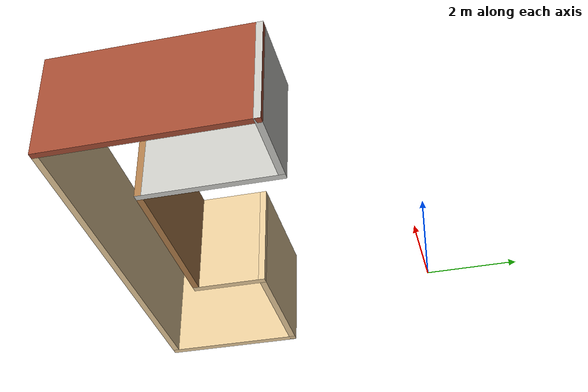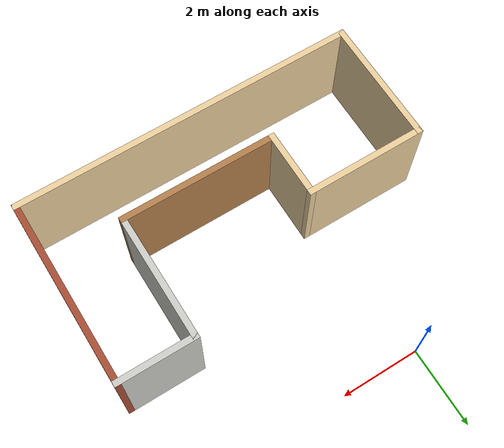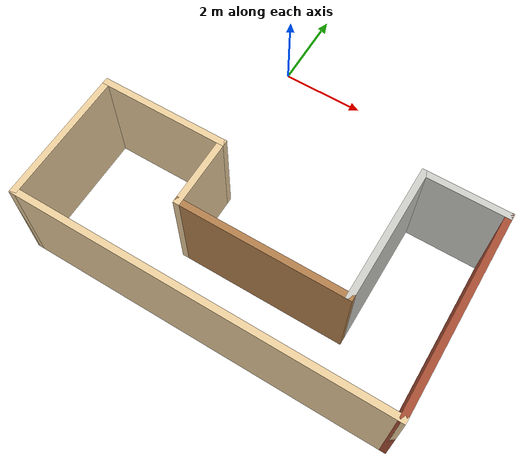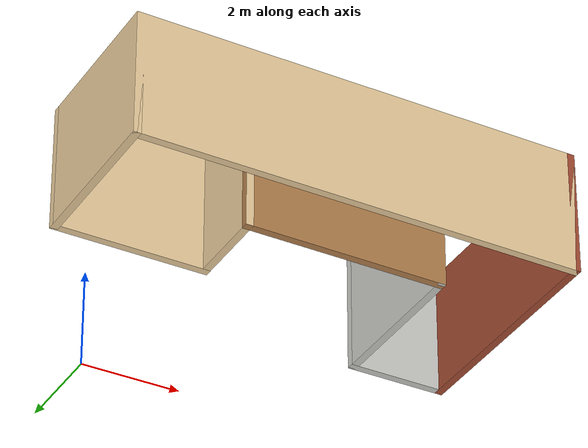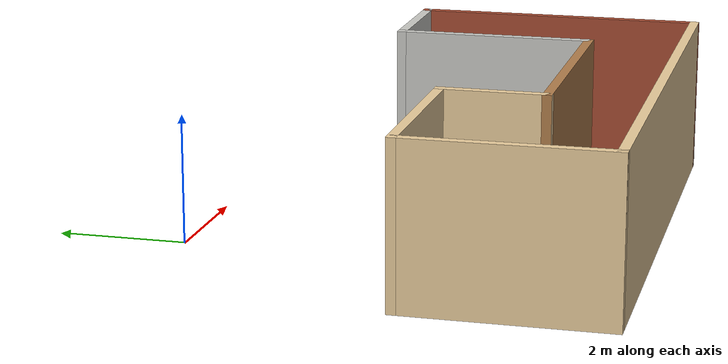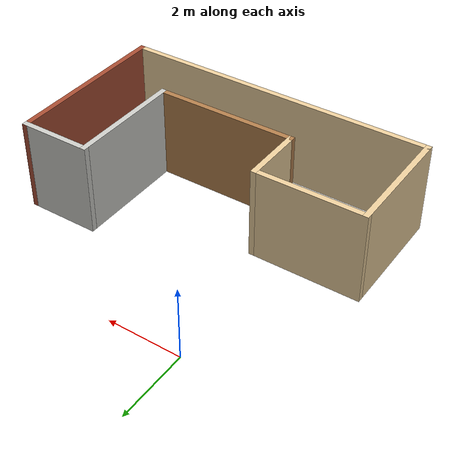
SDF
<?xml version='1.0'?>
<sdf version='1.6'>
  <model name='test'>
    <pose frame=''>1.97333 -4.5985 0 0 -0 0</pose>
    <link name='Wall_33'>
      <collision name='Wall_33_Collision'>
        <geometry>
          <box>
            <size>3.25 0.15 2.5</size>
          </box>
        </geometry>
        <pose frame=''>0 0 1.25 0 -0 0</pose>
      </collision>
      <visual name='Wall_33_Visual'>
        <pose frame=''>0 0 1.25 0 -0 0</pose>
        <geometry>
          <box>
            <size>3.25 0.15 2.5</size>
          </box>
        </geometry>
        <material>
          <script>
            <uri>file://media/materials/scripts/gazebo.material</uri>
            <name>Gazebo/Grey</name>
          </script>
          <ambient>0.921569 0.807843 0.615686 1</ambient>
        </material>
        <meta>
          <layer>0</layer>
        </meta>
      </visual>
      <pose frame=''>-4.3 -0.75 0 0 -0 -1.5708</pose>
    </link>
    <link name='Wall_34'>
      <collision name='Wall_34_Collision'>
        <geometry>
          <box>
            <size>8.75 0.15 2.5</size>
          </box>
        </geometry>
        <pose frame=''>0 0 1.25 0 -0 0</pose>
      </collision>
      <visual name='Wall_34_Visual'>
        <pose frame=''>0 0 1.25 0 -0 0</pose>
        <geometry>
          <box>
            <size>8.75 0.15 2.5</size>
          </box>
        </geometry>
        <material>
          <script>
            <uri>file://media/materials/scripts/gazebo.material</uri>
            <name>Gazebo/Grey</name>
          </script>
          <ambient>0.921569 0.807843 0.615686 1</ambient>
        </material>
        <meta>
          <layer>0</layer>
        </meta>
      </visual>
      <pose frame=''>0 -2.3 0 0 -0 0</pose>
    </link>
    <link name='Wall_35'>
      <collision name='Wall_35_Collision'>
        <geometry>
          <box>
            <size>4.75 0.15 2.5</size>
          </box>
        </geometry>
        <pose frame=''>0 0 1.25 0 -0 0</pose>
      </collision>
      <visual name='Wall_35_Visual'>
        <pose frame=''>0 0 1.25 0 -0 0</pose>
        <geometry>
          <box>
            <size>4.75 0.15 2.5</size>
          </box>
        </geometry>
        <material>
          <script>
            <uri>file://media/materials/scripts/gazebo.material</uri>
            <name>Gazebo/Bricks</name>
          </script>
          <ambient>1 1 1 1</ambient>
        </material>
        <meta>
          <layer>0</layer>
        </meta>
      </visual>
      <pose frame=''>4.3 0 0 0 -0 1.5708</pose>
    </link>
    <link name='Wall_36'>
      <collision name='Wall_36_Collision'>
        <geometry>
          <box>
            <size>2 0.15 2.5</size>
          </box>
        </geometry>
        <pose frame=''>0 0 1.25 0 -0 0</pose>
      </collision>
      <visual name='Wall_36_Visual'>
        <pose frame=''>0 0 1.25 0 -0 0</pose>
        <geometry>
          <box>
            <size>2 0.15 2.5</size>
          </box>
        </geometry>
        <material>
          <script>
            <uri>file://media/materials/scripts/gazebo.material</uri>
            <name>Gazebo/CeilingTiled</name>
          </script>
          <ambient>1 1 1 1</ambient>
        </material>
        <meta>
          <layer>0</layer>
        </meta>
      </visual>
      <pose frame=''>3.375 2.3 0 0 -0 3.14159</pose>
    </link>
    <link name='Wall_37'>
      <collision name='Wall_37_Collision'>
        <geometry>
          <box>
            <size>3.25 0.15 2.5</size>
          </box>
        </geometry>
        <pose frame=''>0 0 1.25 0 -0 0</pose>
      </collision>
      <visual name='Wall_37_Visual'>
        <pose frame=''>0 0 1.25 0 -0 0</pose>
        <geometry>
          <box>
            <size>3.25 0.15 2.5</size>
          </box>
        </geometry>
        <material>
          <script>
            <uri>file://media/materials/scripts/gazebo.material</uri>
            <name>Gazebo/CeilingTiled</name>
          </script>
          <ambient>1 1 1 1</ambient>
        </material>
        <meta>
          <layer>0</layer>
        </meta>
      </visual>
      <pose frame=''>2.45 0.75 0 0 -0 -1.5708</pose>
    </link>
    <link name='Wall_38'>
      <collision name='Wall_38_Collision'>
        <geometry>
          <box>
            <size>4 0.15 2.5</size>
          </box>
        </geometry>
        <pose frame=''>0 0 1.25 0 -0 0</pose>
      </collision>
      <visual name='Wall_38_Visual'>
        <pose frame=''>0 0 1.25 0 -0 0</pose>
        <geometry>
          <box>
            <size>4 0.15 2.5</size>
          </box>
        </geometry>
        <material>
          <script>
            <uri>file://media/materials/scripts/gazebo.material</uri>
            <name>Gazebo/Wood</name>
          </script>
          <ambient>1 1 1 1</ambient>
        </material>
        <meta>
          <layer>0</layer>
        </meta>
      </visual>
      <pose frame=''>0.525 -0.8 0 0 -0 3.14159</pose>
    </link>
    <link name='Wall_39'>
      <collision name='Wall_39_Collision'>
        <geometry>
          <box>
            <size>1.75 0.15 2.5</size>
          </box>
        </geometry>
        <pose frame=''>0 0 1.25 0 -0 0</pose>
      </collision>
      <visual name='Wall_39_Visual'>
        <pose frame=''>0 0 1.25 0 -0 0</pose>
        <geometry>
          <box>
            <size>1.75 0.15 2.5</size>
          </box>
        </geometry>
        <material>
          <script>
            <uri>file://media/materials/scripts/gazebo.material</uri>
            <name>Gazebo/Grey</name>
          </script>
          <ambient>0.921569 0.807843 0.615686 1</ambient>
        </material>
        <meta>
          <layer>0</layer>
        </meta>
      </visual>
      <pose frame=''>-1.4 0 0 0 -0 1.5708</pose>
    </link>
    <link name='Wall_40'>
      <collision name='Wall_40_Collision'>
        <geometry>
          <box>
            <size>3.05 0.15 2.5</size>
          </box>
        </geometry>
        <pose frame=''>0 0 1.25 0 -0 0</pose>
      </collision>
      <visual name='Wall_40_Visual'>
        <pose frame=''>0 0 1.25 0 -0 0</pose>
        <geometry>
          <box>
            <size>3.05 0.15 2.5</size>
          </box>
        </geometry>
        <material>
          <script>
            <uri>file://media/materials/scripts/gazebo.material</uri>
            <name>Gazebo/Grey</name>
          </script>
          <ambient>0.921569 0.807843 0.615686 1</ambient>
        </material>
        <meta>
          <layer>0</layer>
        </meta>
      </visual>
      <pose frame=''>-2.85 0.8 0 0 -0 3.14159</pose>
    </link>
    <static>1</static>
  </model>
</sdf>
